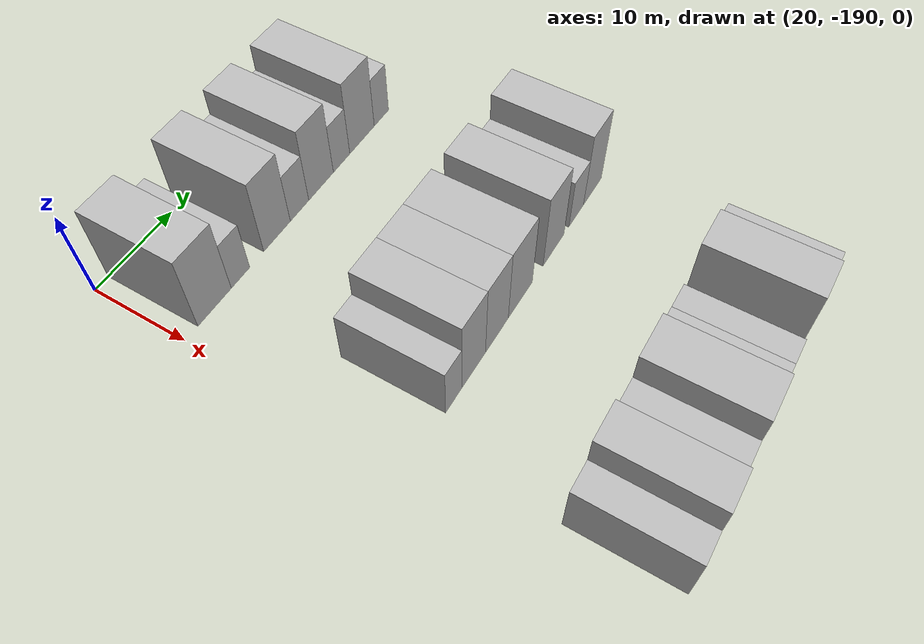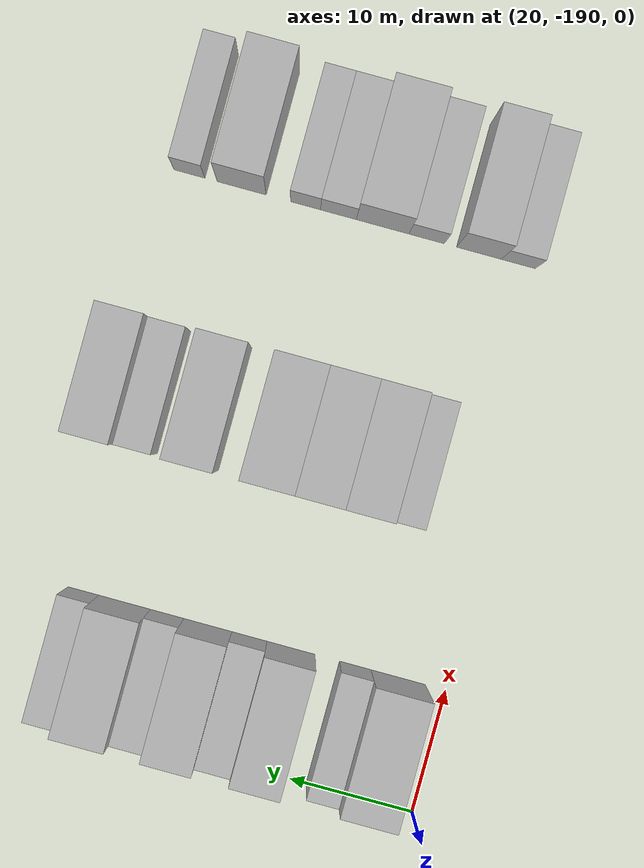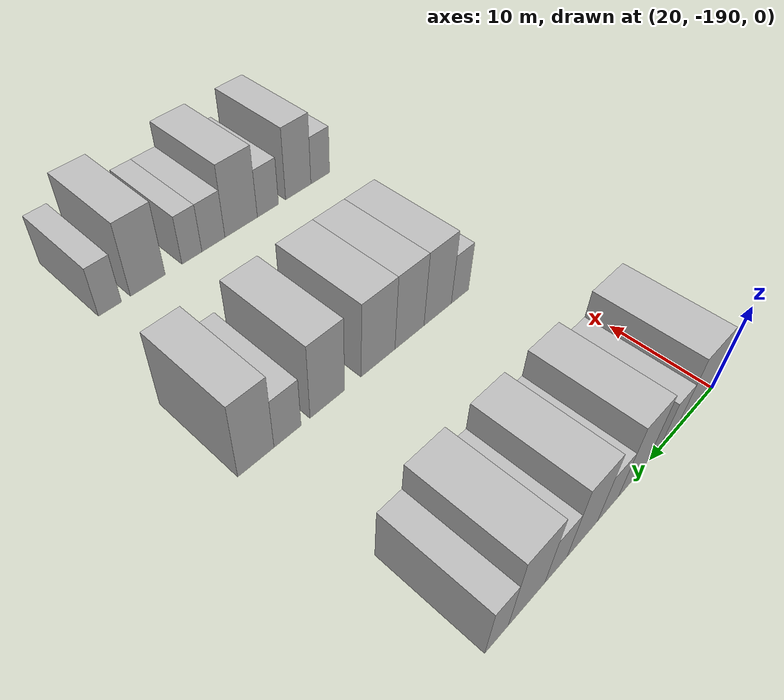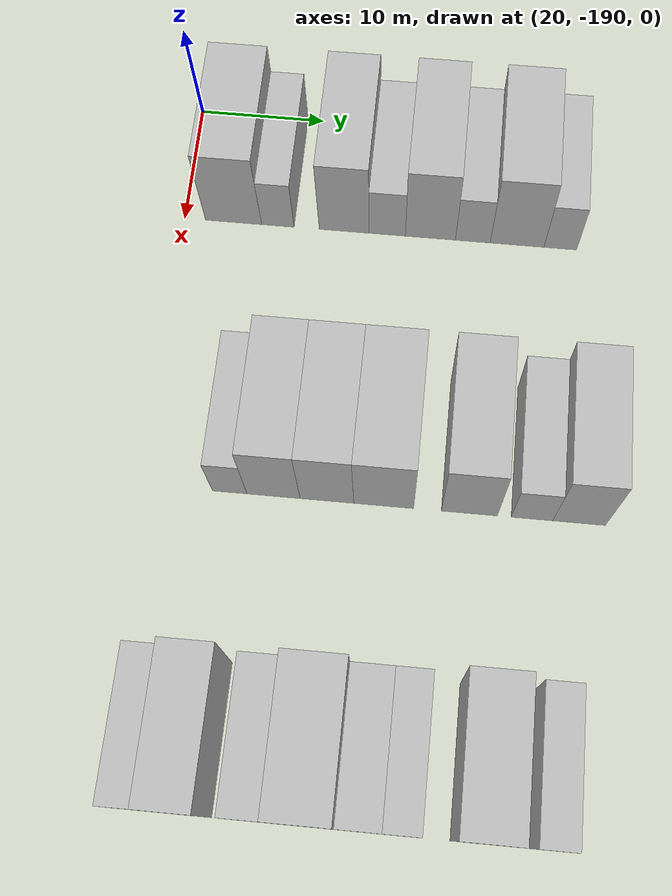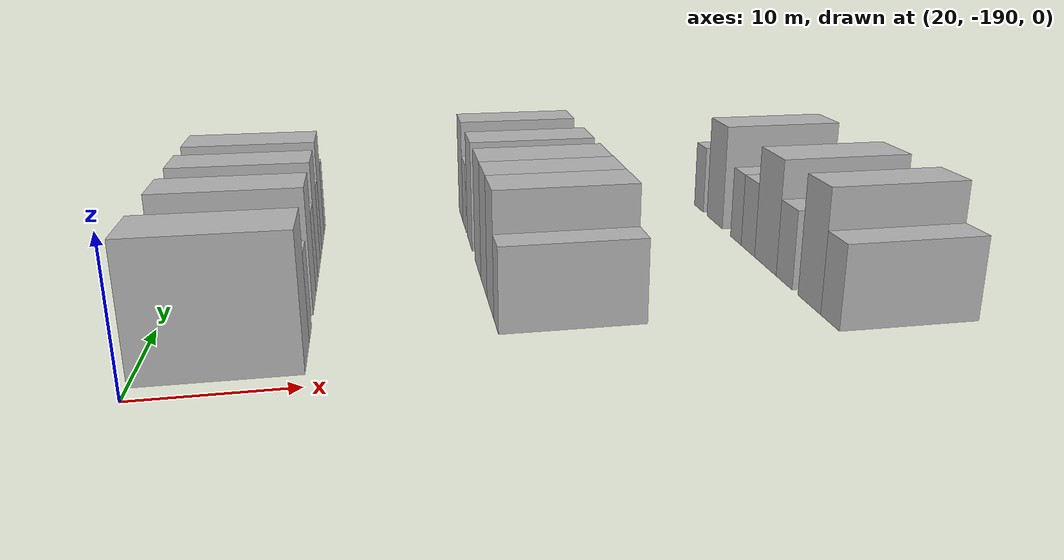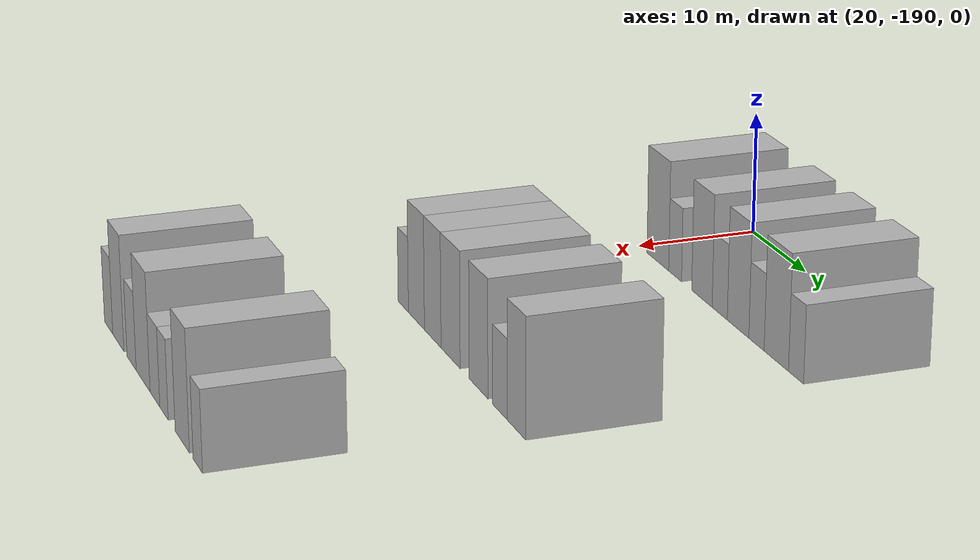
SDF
<sdf version="1.6">
 <world name="default">
  <model name="building_18">
   <static>1</static>
   <pose>25.0000 -186.1081 0 0.000000 0.000000 0.000000</pose>
   <link name="link">
    <pose>0 0 4.50 0 0 0</pose>
    <collision name="collision"><geometry><box><size>10.0000 4.4604 9.0000</size></box></geometry></collision>
    <visual name="visual">
     <cast_shadows>0</cast_shadows>
     <geometry><box><size>10.0000 4.4604 9.0000</size></box></geometry>
     <material>
      <script>
       <uri>model://HANNAS_wall/materials/scripts</uri>
       <uri>model://HANNAS_wall/materials/textures</uri>
       <name>vrc/HANNAS_wall</name>
      </script>
     </material>
    </visual>
   </link>
  </model>
  <model name="building_19">
   <static>1</static>
   <pose>25.0000 -182.5922 0 0.000000 0.000000 0.000000</pose>
   <link name="link">
    <pose>0 0 3.00 0 0 0</pose>
    <collision name="collision"><geometry><box><size>10.0000 2.5716 6.0000</size></box></geometry></collision>
    <visual name="visual">
     <cast_shadows>0</cast_shadows>
     <geometry><box><size>10.0000 2.5716 6.0000</size></box></geometry>
     <material>
      <script>
       <uri>model://HANNAS_wall/materials/scripts</uri>
       <uri>model://HANNAS_wall/materials/textures</uri>
       <name>vrc/HANNAS_wall</name>
      </script>
     </material>
    </visual>
   </link>
  </model>
  <model name="building_20">
   <static>1</static>
   <pose>25.0000 -177.3337 0 0.000000 0.000000 0.000000</pose>
   <link name="link">
    <pose>0 0 4.50 0 0 0</pose>
    <collision name="collision"><geometry><box><size>10.0000 3.9453 9.0000</size></box></geometry></collision>
    <visual name="visual">
     <cast_shadows>0</cast_shadows>
     <geometry><box><size>10.0000 3.9453 9.0000</size></box></geometry>
     <material>
      <script>
       <uri>model://HANNAS_wall/materials/scripts</uri>
       <uri>model://HANNAS_wall/materials/textures</uri>
       <name>vrc/HANNAS_wall</name>
      </script>
     </material>
    </visual>
   </link>
  </model>
  <model name="building_21">
   <static>1</static>
   <pose>25.0000 -173.9365 0 0.000000 0.000000 0.000000</pose>
   <link name="link">
    <pose>0 0 3.00 0 0 0</pose>
    <collision name="collision"><geometry><box><size>10.0000 2.8492 6.0000</size></box></geometry></collision>
    <visual name="visual">
     <cast_shadows>0</cast_shadows>
     <geometry><box><size>10.0000 2.8492 6.0000</size></box></geometry>
     <material>
      <script>
       <uri>model://HANNAS_wall/materials/scripts</uri>
       <uri>model://HANNAS_wall/materials/textures</uri>
       <name>vrc/HANNAS_wall</name>
      </script>
     </material>
    </visual>
   </link>
  </model>
  <model name="building_22">
   <static>1</static>
   <pose>25.0000 -170.5430 0 0.000000 0.000000 0.000000</pose>
   <link name="link">
    <pose>0 0 4.50 0 0 0</pose>
    <collision name="collision"><geometry><box><size>10.0000 3.9377 9.0000</size></box></geometry></collision>
    <visual name="visual">
     <cast_shadows>0</cast_shadows>
     <geometry><box><size>10.0000 3.9377 9.0000</size></box></geometry>
     <material>
      <script>
       <uri>model://HANNAS_wall/materials/scripts</uri>
       <uri>model://HANNAS_wall/materials/textures</uri>
       <name>vrc/HANNAS_wall</name>
      </script>
     </material>
    </visual>
   </link>
  </model>
  <model name="building_23">
   <static>1</static>
   <pose>25.0000 -167.2108 0 0.000000 0.000000 0.000000</pose>
   <link name="link">
    <pose>0 0 3.00 0 0 0</pose>
    <collision name="collision"><geometry><box><size>10.0000 2.7267 6.0000</size></box></geometry></collision>
    <visual name="visual">
     <cast_shadows>0</cast_shadows>
     <geometry><box><size>10.0000 2.7267 6.0000</size></box></geometry>
     <material>
      <script>
       <uri>model://HANNAS_wall/materials/scripts</uri>
       <uri>model://HANNAS_wall/materials/textures</uri>
       <name>vrc/HANNAS_wall</name>
      </script>
     </material>
    </visual>
   </link>
  </model>
  <model name="building_24">
   <static>1</static>
   <pose>25.0000 -163.7393 0 0.000000 0.000000 0.000000</pose>
   <link name="link">
    <pose>0 0 4.50 0 0 0</pose>
    <collision name="collision"><geometry><box><size>10.0000 4.2165 9.0000</size></box></geometry></collision>
    <visual name="visual">
     <cast_shadows>0</cast_shadows>
     <geometry><box><size>10.0000 4.2165 9.0000</size></box></geometry>
     <material>
      <script>
       <uri>model://HANNAS_wall/materials/scripts</uri>
       <uri>model://HANNAS_wall/materials/textures</uri>
       <name>vrc/HANNAS_wall</name>
      </script>
     </material>
    </visual>
   </link>
  </model>
  <model name="building_25">
   <static>1</static>
   <pose>25.0000 -160.3569 0 0.000000 0.000000 0.000000</pose>
   <link name="link">
    <pose>0 0 3.00 0 0 0</pose>
    <collision name="collision"><geometry><box><size>10.0000 2.5483 6.0000</size></box></geometry></collision>
    <visual name="visual">
     <cast_shadows>0</cast_shadows>
     <geometry><box><size>10.0000 2.5483 6.0000</size></box></geometry>
     <material>
      <script>
       <uri>model://HANNAS_wall/materials/scripts</uri>
       <uri>model://HANNAS_wall/materials/textures</uri>
       <name>vrc/HANNAS_wall</name>
      </script>
     </material>
    </visual>
   </link>
  </model>
  <model name="building_145">
   <static>1</static>
   <pose>47.0000 -183.3942 0 0.000000 0.000000 0.000000</pose>
   <link name="link">
    <pose>0 0 3.00 0 0 0</pose>
    <collision name="collision"><geometry><box><size>10.0000 2.5010 6.0000</size></box></geometry></collision>
    <visual name="visual">
     <cast_shadows>0</cast_shadows>
     <geometry><box><size>10.0000 2.5010 6.0000</size></box></geometry>
     <material>
      <script>
       <uri>model://HANNAS_wall/materials/scripts</uri>
       <uri>model://HANNAS_wall/materials/textures</uri>
       <name>vrc/HANNAS_wall</name>
      </script>
     </material>
    </visual>
   </link>
  </model>
  <model name="building_146">
   <static>1</static>
   <pose>47.0000 -180.2163 0 0.000000 0.000000 0.000000</pose>
   <link name="link">
    <pose>0 0 4.50 0 0 0</pose>
    <collision name="collision"><geometry><box><size>10.0000 3.8549 9.0000</size></box></geometry></collision>
    <visual name="visual">
     <cast_shadows>0</cast_shadows>
     <geometry><box><size>10.0000 3.8549 9.0000</size></box></geometry>
     <material>
      <script>
       <uri>model://HANNAS_wall/materials/scripts</uri>
       <uri>model://HANNAS_wall/materials/textures</uri>
       <name>vrc/HANNAS_wall</name>
      </script>
     </material>
    </visual>
   </link>
  </model>
  <model name="building_147">
   <static>1</static>
   <pose>47.0000 -176.3482 0 0.000000 0.000000 0.000000</pose>
   <link name="link">
    <pose>0 0 4.50 0 0 0</pose>
    <collision name="collision"><geometry><box><size>10.0000 3.8812 9.0000</size></box></geometry></collision>
    <visual name="visual">
     <cast_shadows>0</cast_shadows>
     <geometry><box><size>10.0000 3.8812 9.0000</size></box></geometry>
     <material>
      <script>
       <uri>model://HANNAS_wall/materials/scripts</uri>
       <uri>model://HANNAS_wall/materials/textures</uri>
       <name>vrc/HANNAS_wall</name>
      </script>
     </material>
    </visual>
   </link>
  </model>
  <model name="building_148">
   <static>1</static>
   <pose>47.0000 -172.2595 0 0.000000 0.000000 0.000000</pose>
   <link name="link">
    <pose>0 0 4.50 0 0 0</pose>
    <collision name="collision"><geometry><box><size>10.0000 4.2963 9.0000</size></box></geometry></collision>
    <visual name="visual">
     <cast_shadows>0</cast_shadows>
     <geometry><box><size>10.0000 4.2963 9.0000</size></box></geometry>
     <material>
      <script>
       <uri>model://HANNAS_wall/materials/scripts</uri>
       <uri>model://HANNAS_wall/materials/textures</uri>
       <name>vrc/HANNAS_wall</name>
      </script>
     </material>
    </visual>
   </link>
  </model>
  <model name="building_149">
   <static>1</static>
   <pose>47.0000 -166.1068 0 0.000000 0.000000 0.000000</pose>
   <link name="link">
    <pose>0 0 4.50 0 0 0</pose>
    <collision name="collision"><geometry><box><size>10.0000 4.0091 9.0000</size></box></geometry></collision>
    <visual name="visual">
     <cast_shadows>0</cast_shadows>
     <geometry><box><size>10.0000 4.0091 9.0000</size></box></geometry>
     <material>
      <script>
       <uri>model://HANNAS_wall/materials/scripts</uri>
       <uri>model://HANNAS_wall/materials/textures</uri>
       <name>vrc/HANNAS_wall</name>
      </script>
     </material>
    </visual>
   </link>
  </model>
  <model name="building_150">
   <static>1</static>
   <pose>47.0000 -161.6256 0 0.000000 0.000000 0.000000</pose>
   <link name="link">
    <pose>0 0 3.00 0 0 0</pose>
    <collision name="collision"><geometry><box><size>10.0000 2.9534 6.0000</size></box></geometry></collision>
    <visual name="visual">
     <cast_shadows>0</cast_shadows>
     <geometry><box><size>10.0000 2.9534 6.0000</size></box></geometry>
     <material>
      <script>
       <uri>model://HANNAS_wall/materials/scripts</uri>
       <uri>model://HANNAS_wall/materials/textures</uri>
       <name>vrc/HANNAS_wall</name>
      </script>
     </material>
    </visual>
   </link>
  </model>
  <model name="building_151">
   <static>1</static>
   <pose>47.0000 -158.2668 0 0.000000 0.000000 0.000000</pose>
   <link name="link">
    <pose>0 0 4.50 0 0 0</pose>
    <collision name="collision"><geometry><box><size>10.0000 3.7643 9.0000</size></box></geometry></collision>
    <visual name="visual">
     <cast_shadows>0</cast_shadows>
     <geometry><box><size>10.0000 3.7643 9.0000</size></box></geometry>
     <material>
      <script>
       <uri>model://HANNAS_wall/materials/scripts</uri>
       <uri>model://HANNAS_wall/materials/textures</uri>
       <name>vrc/HANNAS_wall</name>
      </script>
     </material>
    </visual>
   </link>
  </model>
  <model name="building_265">
   <static>1</static>
   <pose>69.0000 -186.6327 0 0.000000 0.000000 0.000000</pose>
   <link name="link">
    <pose>0 0 3.00 0 0 0</pose>
    <collision name="collision"><geometry><box><size>10.0000 2.7902 6.0000</size></box></geometry></collision>
    <visual name="visual">
     <cast_shadows>0</cast_shadows>
     <geometry><box><size>10.0000 2.7902 6.0000</size></box></geometry>
     <material>
      <script>
       <uri>model://HANNAS_wall/materials/scripts</uri>
       <uri>model://HANNAS_wall/materials/textures</uri>
       <name>vrc/HANNAS_wall</name>
      </script>
     </material>
    </visual>
   </link>
  </model>
  <model name="building_266">
   <static>1</static>
   <pose>69.0000 -183.4067 0 0.000000 0.000000 0.000000</pose>
   <link name="link">
    <pose>0 0 4.50 0 0 0</pose>
    <collision name="collision"><geometry><box><size>10.0000 3.6618 9.0000</size></box></geometry></collision>
    <visual name="visual">
     <cast_shadows>0</cast_shadows>
     <geometry><box><size>10.0000 3.6618 9.0000</size></box></geometry>
     <material>
      <script>
       <uri>model://HANNAS_wall/materials/scripts</uri>
       <uri>model://HANNAS_wall/materials/textures</uri>
       <name>vrc/HANNAS_wall</name>
      </script>
     </material>
    </visual>
   </link>
  </model>
  <model name="building_267">
   <static>1</static>
   <pose>69.0000 -179.1189 0 0.000000 0.000000 0.000000</pose>
   <link name="link">
    <pose>0 0 3.00 0 0 0</pose>
    <collision name="collision"><geometry><box><size>10.0000 2.9137 6.0000</size></box></geometry></collision>
    <visual name="visual">
     <cast_shadows>0</cast_shadows>
     <geometry><box><size>10.0000 2.9137 6.0000</size></box></geometry>
     <material>
      <script>
       <uri>model://HANNAS_wall/materials/scripts</uri>
       <uri>model://HANNAS_wall/materials/textures</uri>
       <name>vrc/HANNAS_wall</name>
      </script>
     </material>
    </visual>
   </link>
  </model>
  <model name="building_268">
   <static>1</static>
   <pose>69.0000 -175.5165 0 0.000000 0.000000 0.000000</pose>
   <link name="link">
    <pose>0 0 4.50 0 0 0</pose>
    <collision name="collision"><geometry><box><size>10.0000 4.2912 9.0000</size></box></geometry></collision>
    <visual name="visual">
     <cast_shadows>0</cast_shadows>
     <geometry><box><size>10.0000 4.2912 9.0000</size></box></geometry>
     <material>
      <script>
       <uri>model://HANNAS_wall/materials/scripts</uri>
       <uri>model://HANNAS_wall/materials/textures</uri>
       <name>vrc/HANNAS_wall</name>
      </script>
     </material>
    </visual>
   </link>
  </model>
  <model name="building_269">
   <static>1</static>
   <pose>69.0000 -171.9085 0 0.000000 0.000000 0.000000</pose>
   <link name="link">
    <pose>0 0 3.00 0 0 0</pose>
    <collision name="collision"><geometry><box><size>10.0000 2.9249 6.0000</size></box></geometry></collision>
    <visual name="visual">
     <cast_shadows>0</cast_shadows>
     <geometry><box><size>10.0000 2.9249 6.0000</size></box></geometry>
     <material>
      <script>
       <uri>model://HANNAS_wall/materials/scripts</uri>
       <uri>model://HANNAS_wall/materials/textures</uri>
       <name>vrc/HANNAS_wall</name>
      </script>
     </material>
    </visual>
   </link>
  </model>
  <model name="building_270">
   <static>1</static>
   <pose>69.0000 -169.2185 0 0.000000 0.000000 0.000000</pose>
   <link name="link">
    <pose>0 0 3.00 0 0 0</pose>
    <collision name="collision"><geometry><box><size>10.0000 2.4550 6.0000</size></box></geometry></collision>
    <visual name="visual">
     <cast_shadows>0</cast_shadows>
     <geometry><box><size>10.0000 2.4550 6.0000</size></box></geometry>
     <material>
      <script>
       <uri>model://HANNAS_wall/materials/scripts</uri>
       <uri>model://HANNAS_wall/materials/textures</uri>
       <name>vrc/HANNAS_wall</name>
      </script>
     </material>
    </visual>
   </link>
  </model>
  <model name="building_271">
   <static>1</static>
   <pose>69.0000 -163.9866 0 0.000000 0.000000 0.000000</pose>
   <link name="link">
    <pose>0 0 4.50 0 0 0</pose>
    <collision name="collision"><geometry><box><size>10.0000 4.0088 9.0000</size></box></geometry></collision>
    <visual name="visual">
     <cast_shadows>0</cast_shadows>
     <geometry><box><size>10.0000 4.0088 9.0000</size></box></geometry>
     <material>
      <script>
       <uri>model://HANNAS_wall/materials/scripts</uri>
       <uri>model://HANNAS_wall/materials/textures</uri>
       <name>vrc/HANNAS_wall</name>
      </script>
     </material>
    </visual>
   </link>
  </model>
  <model name="building_272">
   <static>1</static>
   <pose>69.0000 -159.7208 0 0.000000 0.000000 0.000000</pose>
   <link name="link">
    <pose>0 0 3.00 0 0 0</pose>
    <collision name="collision"><geometry><box><size>10.0000 2.5230 6.0000</size></box></geometry></collision>
    <visual name="visual">
     <cast_shadows>0</cast_shadows>
     <geometry><box><size>10.0000 2.5230 6.0000</size></box></geometry>
     <material>
      <script>
       <uri>model://HANNAS_wall/materials/scripts</uri>
       <uri>model://HANNAS_wall/materials/textures</uri>
       <name>vrc/HANNAS_wall</name>
      </script>
     </material>
    </visual>
   </link>
  </model>
 </world>
</sdf>
